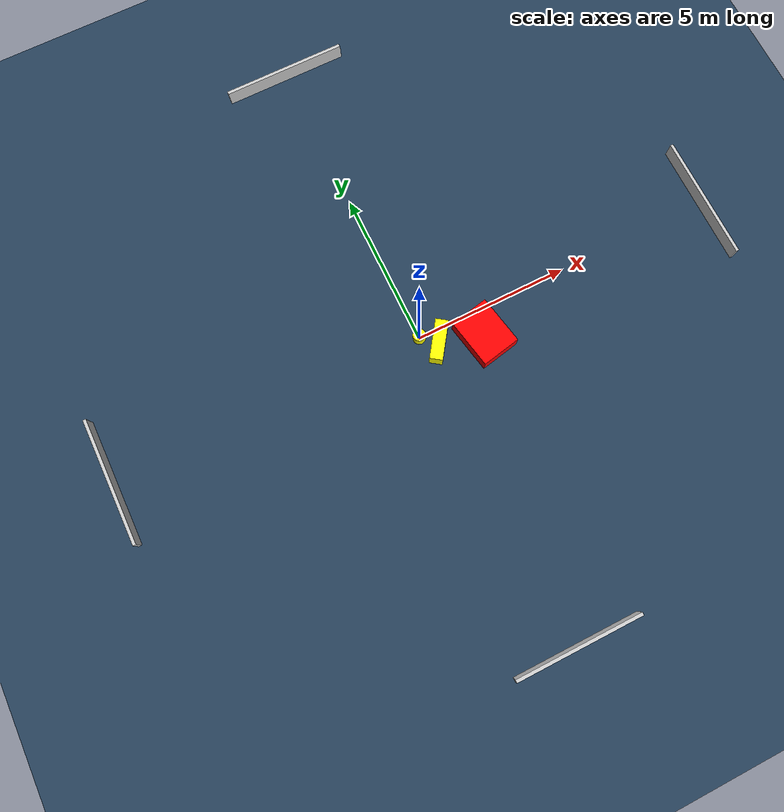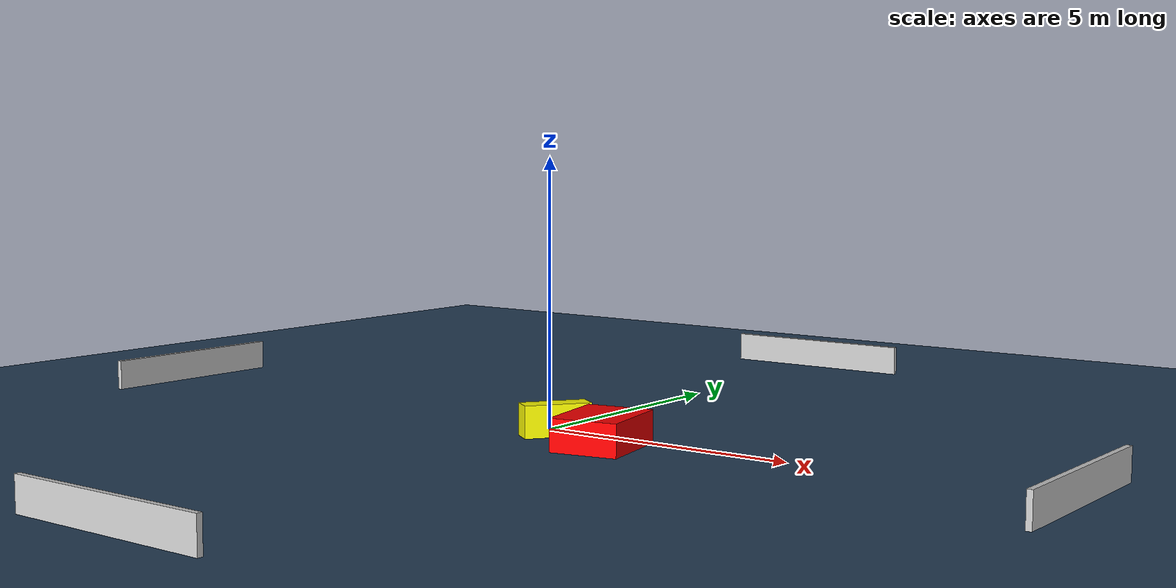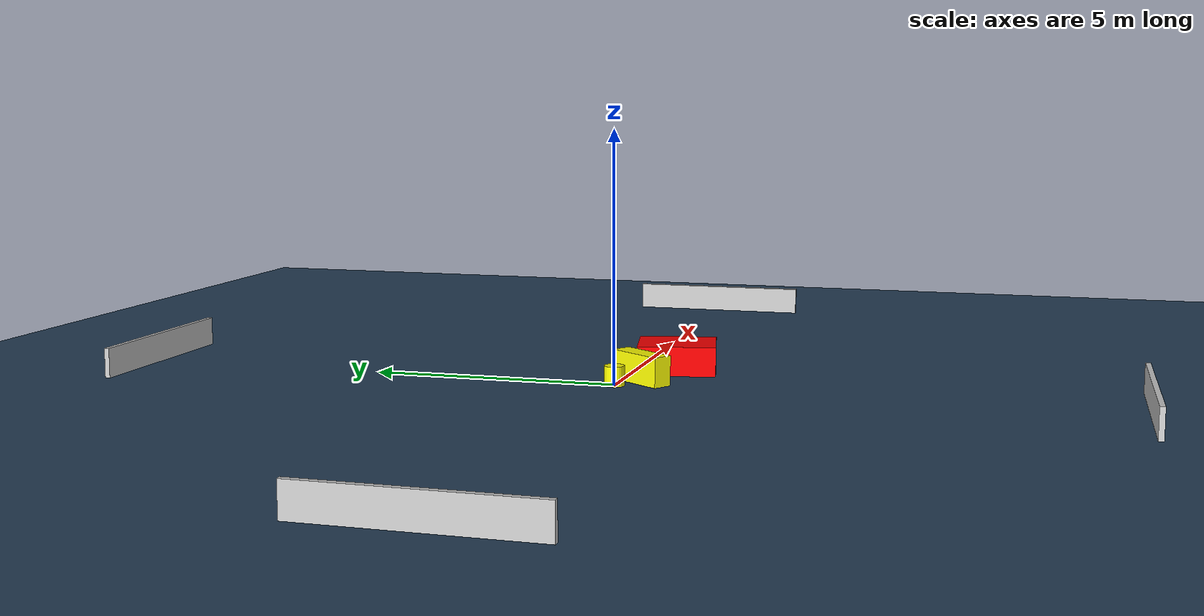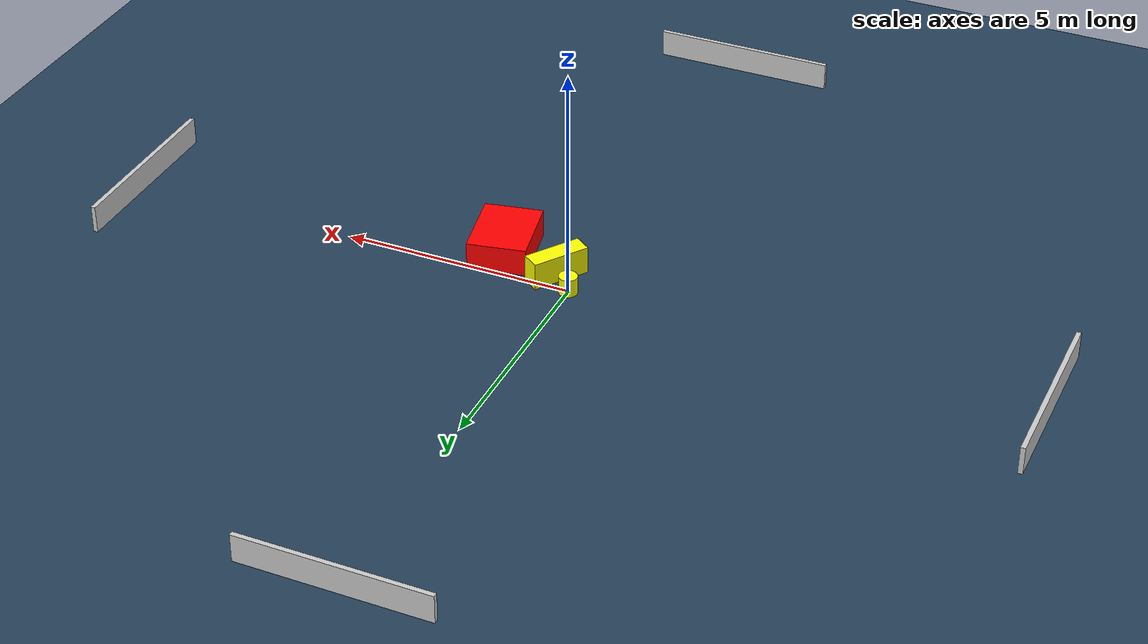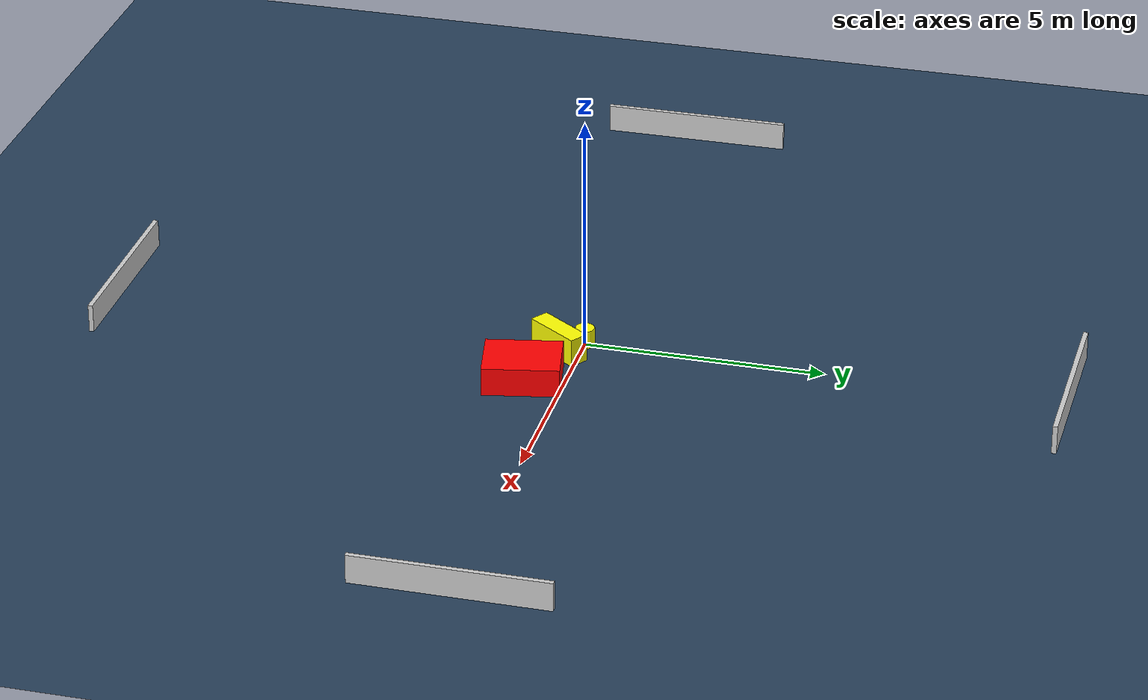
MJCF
<?xml version="1.0" ?>
<mujoco model="generated_environment">
  <option timestep="0.01" integrator="RK4" cone="elliptic"/>
  <default>
    <geom density="1"/>
  </default>
  <asset>
    <texture builtin="gradient" height="3072" name="skybox" rgb1="0.3 0.5 0.7" rgb2="0 0 0" type="skybox" width="512"/>
    <texture builtin="checker" height="300" name="groundplane" rgb1="0.2 0.3 0.4" rgb2="0.1 0.2 0.3" type="2d" width="300"/>
    <material name="groundplane" reflectance="0.2" texrepeat="5 5" texture="groundplane"/>
  </asset>
  <worldbody>
    <light dir="0 0 -1" directional="true" pos="0 0 1.5"/>
    <geom condim="3" friction="0.5 0.005 0.001" material="groundplane" name="floor" pos="0 0 0" size="0 0 0.05" type="plane"/>
    <body name="walls">
      <geom name="wall_1" condim="4" pos="-10.0 0.0 0.3" rgba="0.800000011920929 0.800000011920929 0.800000011920929 1.0" size="0.05 2.0 0.3" type="box"/>
      <geom name="wall_2" condim="4" pos="10.0 0.0 0.3" rgba="0.800000011920929 0.800000011920929 0.800000011920929 1.0" size="0.05 2.0 0.3" type="box"/>
      <geom name="wall_3" condim="4" pos="0.0 -10.0 0.3" rgba="0.800000011920929 0.800000011920929 0.800000011920929 1.0" size="2.0 0.05 0.3" type="box"/>
      <geom name="wall_4" condim="4" pos="0.0 10.0 0.3" rgba="0.800000011920929 0.800000011920929 0.800000011920929 1.0" size="2.0 0.05 0.3" type="box"/>
    </body>
    <body name="robot">
      <joint name="joint_x" type="slide" pos="0 0 0" axis="1 0 0"/>
      <joint name="joint_y" type="slide" pos="0 0 0" axis="0 1 0"/>
      <geom name="robot" type="cylinder" pos="0.0 0.0 0.2" size="0.2 0.2 0.0" mass="5.0" friction="1.0 0.005 0.0001" condim="4" rgba="1.0 1.0 0.0 1.0"/>
    </body>
    <body name="obstacle_1_movable">
      <geom name="obstacle_1_movable" condim="4" pos="0.45298252766203145 -0.4330013985361951 0.3" euler="0 0 235.0937356144066" friction="0.0 0.005 0.001" rgba="1.0 1.0 0.0 1.0" size="0.6283267534588401 0.20377734342527978 0.3" type="box" mass="0.1"/>
      <joint type="free"/>
    </body>
    <body name="obstacle_2_static">
      <geom name="obstacle_2_static" condim="4" pos="1.801545114235296 -0.8405378291367153 0.3" euler="0 0 11.256284872972131" friction="0.0 0.005 0.001" rgba="1.0 0.0 0.0 1.0" size="0.6292032562694048 0.792967382643498 0.3" type="box"/>
    </body>
  </worldbody>
  <actuator>
    <motor name="actuator_x" joint="joint_x" gear="1" ctrlrange="-1 1"/>
    <motor name="actuator_y" joint="joint_y" gear="1" ctrlrange="-1 1"/>
  </actuator>
</mujoco>
